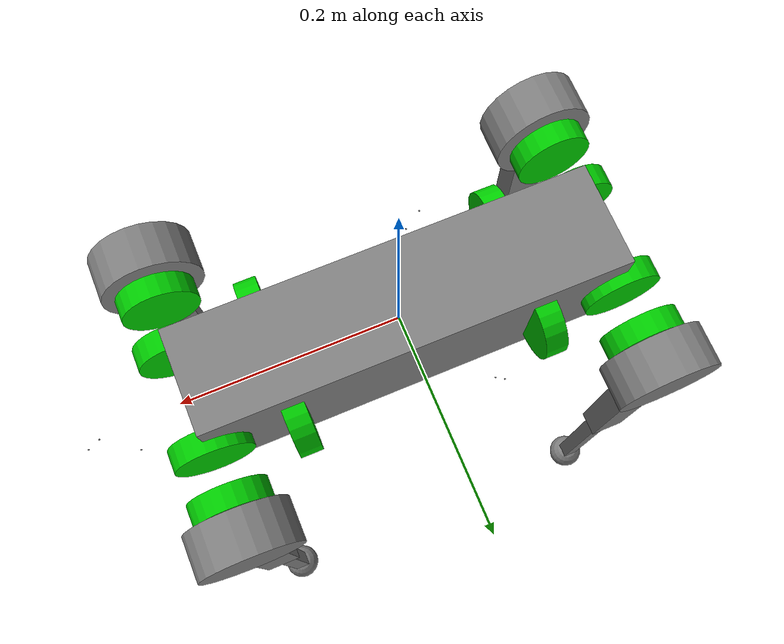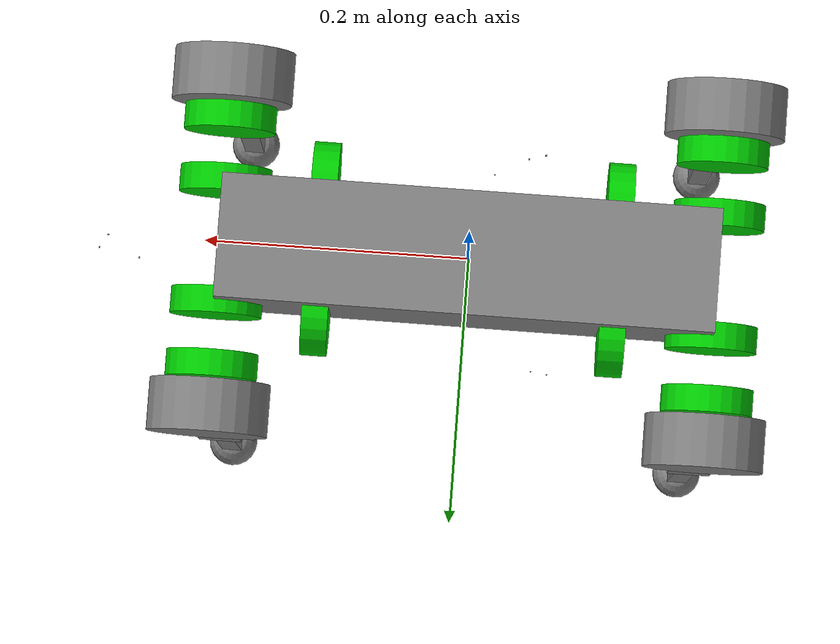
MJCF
<mujoco model="go1">
    <compiler angle="radian" />
    <size njmax="500" nconmax="100" />
    <worldbody>
        <geom size="0.1881 0.04675 0.057" type="box" />
        <geom size="0.0005 0.0005 0.0005" pos="-0.01592 -0.06659 -0.00617" type="box" />
        <geom size="0.035 0.01" pos="0.11215 -0.04675 0" quat="0.707107 0 0.707107 0" type="cylinder" rgba="0 0.8 0 1" />
        <geom size="0.035 0.01" pos="0.11215 0.04675 0" quat="0.707107 0 0.707107 0" type="cylinder" rgba="0 0.8 0 1" />
        <geom size="0.035 0.01" pos="-0.11215 -0.04675 0" quat="0.707107 0 0.707107 0" type="cylinder" rgba="0 0.8 0 1" />
        <geom size="0.035 0.01" pos="-0.11215 0.04675 0" quat="0.707107 0 0.707107 0" type="cylinder" rgba="0 0.8 0 1" />
        <geom size="0.0005 0.0005 0.0005" pos="0.2785 0.0125 0.0167" quat="0 1 0 0" type="box" />
        <geom size="0.0005 0.0005 0.0005" pos="0.2522 0.0125 -0.0436" quat="0 0.707107 0 -0.707107" type="box" />
        <geom size="0.0005 0.0005 0.0005" pos="-0.066 0.082 -0.0176" quat="0.0922962 0.701057 0.701057 -0.0922962" type="box" />
        <geom size="0.0005 0.0005 0.0005" pos="-0.041 -0.082 -0.0176" quat="-0.0922962 0.701057 -0.701057 -0.0922962" type="box" />
        <geom size="0.0005 0.0005 0.0005" pos="-0.0825 0.0125 -0.04365" quat="0 0.707107 0 -0.707107" type="box" />
        <geom size="0.0005 0.0005 0.0005" pos="-0.0535 0.0826 0.00868" quat="0.701057 -0.0922962 0.0922962 0.701057" type="box" />
        <geom size="0.0005 0.0005 0.0005" pos="-0.0535 -0.0826 0.00868" quat="0.701057 0.0922962 0.0922962 -0.701057" type="box" />
        <geom size="0.0005 0.0005 0.0005" pos="0.2747 0 -0.0088" type="box" />
        <body name="FR_hip" pos="0.1881 -0.04675 0">
            <inertial pos="-0.0049166 0.00762615 -8.865e-05" quat="0.507341 0.514169 0.495027 0.482891" mass="0.68" diaginertia="0.000734064 0.000468438 0.000398719" />
            <joint name="FR_hip_joint" pos="0 0 0" axis="1 0 0" limited="true" range="-0.863 0.863" />
            <geom size="0.046 0.02" pos="0 -0.08 0" quat="0.707107 0.707107 0 0" type="cylinder" />
            <geom size="0.035 0.01" pos="0 0.00015 0" quat="0.707107 0.707107 0 0" type="cylinder" rgba="0 0.8 0 1" />
            <body name="FR_thigh" pos="0 -0.08 0">
                <inertial pos="-0.00304722 0.019315 -0.0305004" quat="0.65243 -0.0272313 0.0775126 0.753383" mass="1.009" diaginertia="0.00478717 0.00460903 0.000709268" />
                <joint name="FR_thigh_joint" pos="0 0 0" axis="0 1 0" limited="true" range="-0.686 4.501" />
                <geom size="0.1065 0.01225 0.017" pos="0 0 -0.1065" quat="0.707107 0 0.707107 0" type="box" />
                <geom size="0.035 0.01" pos="0 0.03235 0" quat="0.707107 0.707107 0 0" type="cylinder" rgba="0 0.8 0 1" />
                <body name="FR_calf" pos="0 0 -0.213">
                    <inertial pos="0.00429862 0.000976676 -0.146197" quat="0.691246 0.00357467 0.00511118 0.722592" mass="0.195862" diaginertia="0.00149767 0.00148468 3.58427e-05" />
                    <joint name="FR_calf_joint" pos="0 0 0" axis="0 1 0" limited="true" range="-2.818 -0.888" />
                    <geom size="0.1065 0.008 0.008" pos="0 0 -0.1065" quat="0.707107 0 0.707107 0" type="box" />
                    <geom size="0.02" pos="0 0 -0.213" />
                </body>
            </body>
        </body>
        <body name="FL_hip" pos="0.1881 0.04675 0">
            <inertial pos="-0.0049166 -0.00762615 -8.865e-05" quat="0.482891 0.495027 0.514169 0.507341" mass="0.68" diaginertia="0.000734064 0.000468438 0.000398719" />
            <joint name="FL_hip_joint" pos="0 0 0" axis="1 0 0" limited="true" range="-0.863 0.863" />
            <geom size="0.046 0.02" pos="0 0.08 0" quat="0.707107 0.707107 0 0" type="cylinder" />
            <geom size="0.035 0.01" pos="0 -0.00015 0" quat="0.707107 0.707107 0 0" type="cylinder" rgba="0 0.8 0 1" />
            <body name="FL_thigh" pos="0 0.08 0">
                <inertial pos="-0.00304722 -0.019315 -0.0305004" quat="0.753383 0.0775126 -0.0272313 0.65243" mass="1.009" diaginertia="0.00478717 0.00460903 0.000709268" />
                <joint name="FL_thigh_joint" pos="0 0 0" axis="0 1 0" limited="true" range="-0.686 4.501" />
                <geom size="0.1065 0.01225 0.017" pos="0 0 -0.1065" quat="0.707107 0 0.707107 0" type="box" />
                <geom size="0.035 0.01" pos="0 -0.03235 0" quat="0.707107 0.707107 0 0" type="cylinder" rgba="0 0.8 0 1" />
                <body name="FL_calf" pos="0 0 -0.213">
                    <inertial pos="0.00429862 0.000976676 -0.146197" quat="0.691246 0.00357467 0.00511118 0.722592" mass="0.195862" diaginertia="0.00149767 0.00148468 3.58427e-05" />
                    <joint name="FL_calf_joint" pos="0 0 0" axis="0 1 0" limited="true" range="-2.818 -0.888" />
                    <geom size="0.1065 0.008 0.008" pos="0 0 -0.1065" quat="0.707107 0 0.707107 0" type="box" />
                    <geom size="0.02" pos="0 0 -0.213" />
                </body>
            </body>
        </body>
        <body name="RR_hip" pos="-0.1881 -0.04675 0">
            <inertial pos="0.0049166 0.00762615 -8.865e-05" quat="0.495027 0.482891 0.507341 0.514169" mass="0.68" diaginertia="0.000734064 0.000468438 0.000398719" />
            <joint name="RR_hip_joint" pos="0 0 0" axis="1 0 0" limited="true" range="-0.863 0.863" />
            <geom size="0.046 0.02" pos="0 -0.08 0" quat="0.707107 0.707107 0 0" type="cylinder" />
            <geom size="0.035 0.01" pos="0 0.00015 0" quat="0.707107 0.707107 0 0" type="cylinder" rgba="0 0.8 0 1" />
            <body name="RR_thigh" pos="0 -0.08 0">
                <inertial pos="-0.00304722 0.019315 -0.0305004" quat="0.65243 -0.0272313 0.0775126 0.753383" mass="1.009" diaginertia="0.00478717 0.00460903 0.000709268" />
                <joint name="RR_thigh_joint" pos="0 0 0" axis="0 1 0" limited="true" range="-0.686 4.501" />
                <geom size="0.1065 0.01225 0.017" pos="0 0 -0.1065" quat="0.707107 0 0.707107 0" type="box" />
                <geom size="0.035 0.01" pos="0 0.03235 0" quat="0.707107 0.707107 0 0" type="cylinder" rgba="0 0.8 0 1" />
                <body name="RR_calf" pos="0 0 -0.213">
                    <inertial pos="0.00429862 0.000976676 -0.146197" quat="0.691246 0.00357467 0.00511118 0.722592" mass="0.195862" diaginertia="0.00149767 0.00148468 3.58427e-05" />
                    <joint name="RR_calf_joint" pos="0 0 0" axis="0 1 0" limited="true" range="-2.818 -0.888" />
                    <geom size="0.1065 0.008 0.008" pos="0 0 -0.1065" quat="0.707107 0 0.707107 0" type="box" />
                    <geom size="0.02" pos="0 0 -0.213" />
                </body>
            </body>
        </body>
        <body name="RL_hip" pos="-0.1881 0.04675 0">
            <inertial pos="0.0049166 -0.00762615 -8.865e-05" quat="0.514169 0.507341 0.482891 0.495027" mass="0.68" diaginertia="0.000734064 0.000468438 0.000398719" />
            <joint name="RL_hip_joint" pos="0 0 0" axis="1 0 0" limited="true" range="-0.863 0.863" />
            <geom size="0.046 0.02" pos="0 0.08 0" quat="0.707107 0.707107 0 0" type="cylinder" />
            <geom size="0.035 0.01" pos="0 -0.00015 0" quat="0.707107 0.707107 0 0" type="cylinder" rgba="0 0.8 0 1" />
            <body name="RL_thigh" pos="0 0.08 0">
                <inertial pos="-0.00304722 -0.019315 -0.0305004" quat="0.753383 0.0775126 -0.0272313 0.65243" mass="1.009" diaginertia="0.00478717 0.00460903 0.000709268" />
                <joint name="RL_thigh_joint" pos="0 0 0" axis="0 1 0" limited="true" range="-0.686 4.501" />
                <geom size="0.1065 0.01225 0.017" pos="0 0 -0.1065" quat="0.707107 0 0.707107 0" type="box" />
                <geom size="0.035 0.01" pos="0 -0.03235 0" quat="0.707107 0.707107 0 0" type="cylinder" rgba="0 0.8 0 1" />
                <body name="RL_calf" pos="0 0 -0.213">
                    <inertial pos="0.00429862 0.000976676 -0.146197" quat="0.691246 0.00357467 0.00511118 0.722592" mass="0.195862" diaginertia="0.00149767 0.00148468 3.58427e-05" />
                    <joint name="RL_calf_joint" pos="0 0 0" axis="0 1 0" limited="true" range="-2.818 -0.888" />
                    <geom size="0.1065 0.008 0.008" pos="0 0 -0.1065" quat="0.707107 0 0.707107 0" type="box" />
                    <geom size="0.02" pos="0 0 -0.213" />
                </body>
            </body>
        </body>
    </worldbody>

    <sensor>
        <framequat name="orientation" objtype="site" noise="0.001" objname="imu"/>
        <framepos name="position" objtype="site" noise="0.001" objname="imu"/>
        <gyro name="angular-velocity" site="imu" noise="0.005" cutoff="34.9"/>
        <velocimeter name="linear-velocity" site="imu" noise="0.001" cutoff="30"/>
        <accelerometer name="linear-acceleration" site="imu" noise="0.005" cutoff="157"/>
        <magnetometer name="magnetometer" site="imu"/>
    </sensor>

</mujoco>
